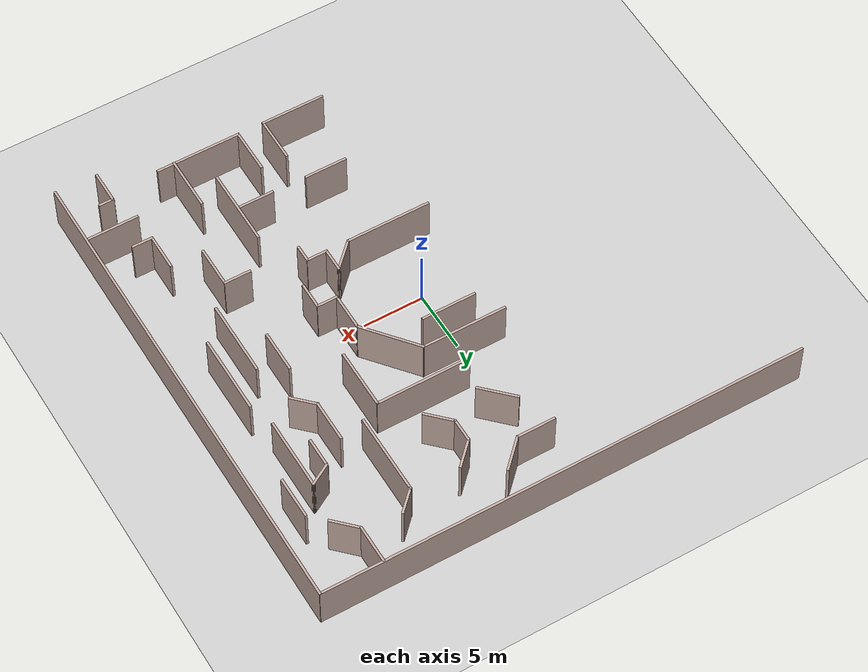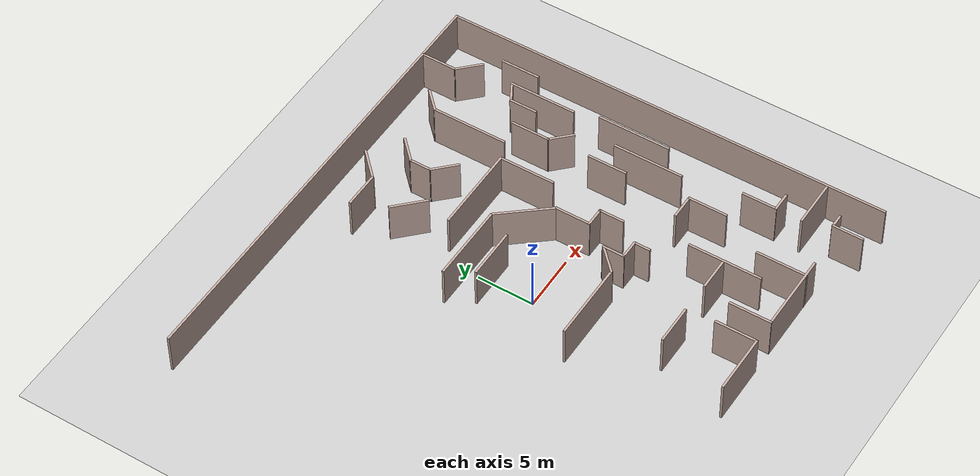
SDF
<sdf version="1.7">
 <world name="default">
  <model name="ground_plane">
   <static>1</static>
   <link name="link">
    <collision name="collision">
     <geometry><plane><normal>0 0 1</normal><size>100 100</size></plane></geometry>
     <surface><friction><ode><mu>100</mu><mu2>50</mu2></ode></friction></surface>
    </collision>
    <visual name="visual">
     <cast_shadows>0</cast_shadows>
     <geometry><plane><normal>0 0 1</normal><size>100 100</size></plane></geometry>
     <material>
      <script><uri>file://media/materials/scripts/gazebo.material</uri><name>Gazebo/Grey</name></script>
     </material>
    </visual>
   </link>
  </model>
  <model name="Untitled">
   <pose>-0.005486 -0.005193 0 0 -0 0</pose>
   <link name="Wall_0">
    <collision name="Wall_0_Collision">
     <geometry><box><size>40.15 0.2 5.0</size></box></geometry>
     <pose>0 0 1.25 0 -0 0</pose>
    </collision>
    <visual name="Wall_0_Visual">
     <pose>0 0 1.25 0 -0 0</pose>
     <geometry><box><size>40.15 0.2 5.0</size></box></geometry>
     <material>
      <script><uri>file://media/materials/scripts/gazebo.material</uri><name>Gazebo/Grey</name></script>
      <ambient>0.760784 0.662745 0.627451 1</ambient>
     </material>
     <meta><layer>0</layer></meta>
    </visual>
    <pose>20.0055 0.005193 0 0 -0 1.5708</pose>
   </link>
   <link name="Wall_10">
    <collision name="Wall_10_Collision">
     <geometry><box><size>3.75 0.2 5.0</size></box></geometry>
     <pose>0 0 1.25 0 -0 0</pose>
    </collision>
    <visual name="Wall_10_Visual">
     <pose>0 0 1.25 0 -0 0</pose>
     <geometry><box><size>3.75 0.2 5.0</size></box></geometry>
     <material>
      <script><uri>file://media/materials/scripts/gazebo.material</uri><name>Gazebo/Grey</name></script>
      <ambient>0.760784 0.662745 0.627451 1</ambient>
     </material>
     <meta><layer>0</layer></meta>
    </visual>
    <pose>5.61157 -16.0529 0 0 -0 1.5708</pose>
   </link>
   <link name="Wall_101">
    <collision name="Wall_101_Collision">
     <geometry><box><size>1.25 0.2 5.0</size></box></geometry>
     <pose>0 0 1.25 0 -0 0</pose>
    </collision>
    <visual name="Wall_101_Visual">
     <pose>0 0 1.25 0 -0 0</pose>
     <geometry><box><size>1.25 0.2 5.0</size></box></geometry>
     <material>
      <script><uri>file://media/materials/scripts/gazebo.material</uri><name>Gazebo/Grey</name></script>
      <ambient>0.760784 0.662745 0.627451 1</ambient>
     </material>
     <meta><layer>0</layer></meta>
    </visual>
    <pose>17.1497 -17.2358 0 0 -0 0</pose>
   </link>
   <link name="Wall_105">
    <collision name="Wall_105_Collision">
     <geometry><box><size>4.5 0.2 5.0</size></box></geometry>
     <pose>0 0 1.25 0 -0 0</pose>
    </collision>
    <visual name="Wall_105_Visual">
     <pose>0 0 1.25 0 -0 0</pose>
     <geometry><box><size>4.5 0.2 5.0</size></box></geometry>
     <material>
      <script><uri>file://media/materials/scripts/gazebo.material</uri><name>Gazebo/Grey</name></script>
      <ambient>0.760784 0.662745 0.627451 1</ambient>
     </material>
     <meta><layer>0</layer></meta>
    </visual>
    <pose>11.0787 -15.7159 0 0 -0 1.5708</pose>
   </link>
   <link name="Wall_108">
    <collision name="Wall_108_Collision">
     <geometry><box><size>4.25 0.2 5.0</size></box></geometry>
     <pose>0 0 1.25 0 -0 0</pose>
    </collision>
    <visual name="Wall_108_Visual">
     <pose>0 0 1.25 0 -0 0</pose>
     <geometry><box><size>4.25 0.2 5.0</size></box></geometry>
     <material>
      <script><uri>file://media/materials/scripts/gazebo.material</uri><name>Gazebo/Grey</name></script>
      <ambient>0.760784 0.662745 0.627451 1</ambient>
     </material>
     <meta><layer>0</layer></meta>
    </visual>
    <pose>17.8248 -14.8964 0 0 -0 3.14159</pose>
   </link>
   <link name="Wall_14">
    <collision name="Wall_14_Collision">
     <geometry><box><size>3.75 0.2 5.0</size></box></geometry>
     <pose>0 0 1.25 0 -0 0</pose>
    </collision>
    <visual name="Wall_14_Visual">
     <pose>0 0 1.25 0 -0 0</pose>
     <geometry><box><size>3.75 0.2 5.0</size></box></geometry>
     <material>
      <script><uri>file://media/materials/scripts/gazebo.material</uri><name>Gazebo/Grey</name></script>
      <ambient>0.760784 0.662745 0.627451 1</ambient>
     </material>
     <meta><layer>0</layer></meta>
    </visual>
    <pose>3.45932 -16.0342 0 0 -0 -1.5708</pose>
   </link>
   <link name="Wall_15">
    <collision name="Wall_15_Collision">
     <geometry><box><size>5.25 0.2 5.0</size></box></geometry>
     <pose>0 0 1.25 0 -0 0</pose>
    </collision>
    <visual name="Wall_15_Visual">
     <pose>0 0 1.25 0 -0 0</pose>
     <geometry><box><size>5.25 0.2 5.0</size></box></geometry>
     <material>
      <script><uri>file://media/materials/scripts/gazebo.material</uri><name>Gazebo/Grey</name></script>
      <ambient>0.760784 0.662745 0.627451 1</ambient>
     </material>
     <meta><layer>0</layer></meta>
    </visual>
    <pose>0.909321 -17.8342 0 0 -0 3.14159</pose>
   </link>
   <link name="Wall_160">
    <collision name="Wall_160_Collision">
     <geometry><box><size>6 0.2 5.0</size></box></geometry>
     <pose>0 0 1.25 0 -0 0</pose>
    </collision>
    <visual name="Wall_160_Visual">
     <pose>0 0 1.25 0 -0 0</pose>
     <geometry><box><size>6 0.2 5.0</size></box></geometry>
     <material>
      <script><uri>file://media/materials/scripts/gazebo.material</uri><name>Gazebo/Grey</name></script>
      <ambient>0.760784 0.662745 0.627451 1</ambient>
     </material>
     <meta><layer>0</layer></meta>
    </visual>
    <pose>16.0332 9.15575 0 0 -0 -1.5708</pose>
   </link>
   <link name="Wall_162">
    <collision name="Wall_162_Collision">
     <geometry><box><size>2 0.2 5.0</size></box></geometry>
     <pose>0 0 1.25 0 -0 0</pose>
    </collision>
    <visual name="Wall_162_Visual">
     <pose>0 0 1.25 0 -0 0</pose>
     <geometry><box><size>2 0.2 5.0</size></box></geometry>
     <material>
      <script><uri>file://media/materials/scripts/gazebo.material</uri><name>Gazebo/Grey</name></script>
      <ambient>0.760784 0.662745 0.627451 1</ambient>
     </material>
     <meta><layer>0</layer></meta>
    </visual>
    <pose>15.2321 11.6183 0 0 -0 -2.61799</pose>
   </link>
   <link name="Wall_163">
    <collision name="Wall_163_Collision">
     <geometry><box><size>2.5 0.2 5.0</size></box></geometry>
     <pose>0 0 1.25 0 -0 0</pose>
    </collision>
    <visual name="Wall_163_Visual">
     <pose>0 0 1.25 0 -0 0</pose>
     <geometry><box><size>2.5 0.2 5.0</size></box></geometry>
     <material>
      <script><uri>file://media/materials/scripts/gazebo.material</uri><name>Gazebo/Grey</name></script>
      <ambient>0.760784 0.662745 0.627451 1</ambient>
     </material>
     <meta><layer>0</layer></meta>
    </visual>
    <pose>14.4311 9.98075 0 0 -0 -1.5708</pose>
   </link>
   <link name="Wall_165">
    <collision name="Wall_165_Collision">
     <geometry><box><size>2.25 0.2 5.0</size></box></geometry>
     <pose>0 0 1.25 0 -0 0</pose>
    </collision>
    <visual name="Wall_165_Visual">
     <pose>0 0 1.25 0 -0 0</pose>
     <geometry><box><size>2.25 0.2 5.0</size></box></geometry>
     <material>
      <script><uri>file://media/materials/scripts/gazebo.material</uri><name>Gazebo/Grey</name></script>
      <ambient>0.760784 0.662745 0.627451 1</ambient>
     </material>
     <meta><layer>0</layer></meta>
    </visual>
    <pose>11.0797 16.5663 0 0 -0 0.785398</pose>
   </link>
   <link name="Wall_168">
    <collision name="Wall_168_Collision">
     <geometry><box><size>6.75 0.2 5.0</size></box></geometry>
     <pose>0 0 1.25 0 -0 0</pose>
    </collision>
    <visual name="Wall_168_Visual">
     <pose>0 0 1.25 0 -0 0</pose>
     <geometry><box><size>6.75 0.2 5.0</size></box></geometry>
     <material>
      <script><uri>file://media/materials/scripts/gazebo.material</uri><name>Gazebo/Grey</name></script>
      <ambient>0.760784 0.662745 0.627451 1</ambient>
     </material>
     <meta><layer>0</layer></meta>
    </visual>
    <pose>10.3373 12.5238 0 0 -0 -1.5708</pose>
   </link>
   <link name="Wall_170">
    <collision name="Wall_170_Collision">
     <geometry><box><size>3.5 0.2 5.0</size></box></geometry>
     <pose>0 0 1.25 0 -0 0</pose>
    </collision>
    <visual name="Wall_170_Visual">
     <pose>0 0 1.25 0 -0 0</pose>
     <geometry><box><size>3.5 0.2 5.0</size></box></geometry>
     <material>
      <script><uri>file://media/materials/scripts/gazebo.material</uri><name>Gazebo/Grey</name></script>
      <ambient>0.760784 0.662745 0.627451 1</ambient>
     </material>
     <meta><layer>0</layer></meta>
    </visual>
    <pose>12.4529 8.046 0 0 -0 -1.5708</pose>
   </link>
   <link name="Wall_171">
    <collision name="Wall_171_Collision">
     <geometry><box><size>2.25 0.2 5.0</size></box></geometry>
     <pose>0 0 1.25 0 -0 0</pose>
    </collision>
    <visual name="Wall_171_Visual">
     <pose>0 0 1.25 0 -0 0</pose>
     <geometry><box><size>2.25 0.2 5.0</size></box></geometry>
     <material>
      <script><uri>file://media/materials/scripts/gazebo.material</uri><name>Gazebo/Grey</name></script>
      <ambient>0.760784 0.662745 0.627451 1</ambient>
     </material>
     <meta><layer>0</layer></meta>
    </visual>
    <pose>13.1954 5.62854 0 0 -0 -0.785398</pose>
   </link>
   <link name="Wall_178">
    <collision name="Wall_178_Collision">
     <geometry><box><size>3.5 0.2 5.0</size></box></geometry>
     <pose>0 0 1.25 0 -0 0</pose>
    </collision>
    <visual name="Wall_178_Visual">
     <pose>0 0 1.25 0 -0 0</pose>
     <geometry><box><size>3.5 0.2 5.0</size></box></geometry>
     <material>
      <script><uri>file://media/materials/scripts/gazebo.material</uri><name>Gazebo/Grey</name></script>
      <ambient>0.760784 0.662745 0.627451 1</ambient>
     </material>
     <meta><layer>0</layer></meta>
    </visual>
    <pose>17.7619 12.3579 0 0 -0 -1.5708</pose>
   </link>
   <link name="Wall_180">
    <collision name="Wall_180_Collision">
     <geometry><box><size>3.25 0.2 5.0</size></box></geometry>
     <pose>0 0 1.25 0 -0 0</pose>
    </collision>
    <visual name="Wall_180_Visual">
     <pose>0 0 1.25 0 -0 0</pose>
     <geometry><box><size>3.25 0.2 5.0</size></box></geometry>
     <material>
      <script><uri>file://media/materials/scripts/gazebo.material</uri><name>Gazebo/Grey</name></script>
      <ambient>0.760784 0.662745 0.627451 1</ambient>
     </material>
     <meta><layer>0</layer></meta>
    </visual>
    <pose>14.9156 18.4231 0 0 -0 -1.5708</pose>
   </link>
   <link name="Wall_181">
    <collision name="Wall_181_Collision">
     <geometry><box><size>2.5 0.2 5.0</size></box></geometry>
     <pose>0 0 1.25 0 -0 0</pose>
    </collision>
    <visual name="Wall_181_Visual">
     <pose>0 0 1.25 0 -0 0</pose>
     <geometry><box><size>2.5 0.2 5.0</size></box></geometry>
     <material>
      <script><uri>file://media/materials/scripts/gazebo.material</uri><name>Gazebo/Grey</name></script>
      <ambient>0.760784 0.662745 0.627451 1</ambient>
     </material>
     <meta><layer>0</layer></meta>
    </visual>
    <pose>15.7464 16.0422 0 0 -0 -0.785398</pose>
   </link>
   <link name="Wall_194">
    <collision name="Wall_194_Collision">
     <geometry><box><size>3.25 0.2 5.0</size></box></geometry>
     <pose>0 0 1.25 0 -0 0</pose>
    </collision>
    <visual name="Wall_194_Visual">
     <pose>0 0 1.25 0 -0 0</pose>
     <geometry><box><size>3.25 0.2 5.0</size></box></geometry>
     <material>
      <script><uri>file://media/materials/scripts/gazebo.material</uri><name>Gazebo/Grey</name></script>
      <ambient>0.760784 0.662745 0.627451 1</ambient>
     </material>
     <meta><layer>0</layer></meta>
    </visual>
    <pose>0.872 12.0434 0 0 -0 -0.785398</pose>
   </link>
   <link name="Wall_197">
    <collision name="Wall_197_Collision">
     <geometry><box><size>3.25 0.2 5.0</size></box></geometry>
     <pose>0 0 1.25 0 -0 0</pose>
    </collision>
    <visual name="Wall_197_Visual">
     <pose>0 0 1.25 0 -0 0</pose>
     <geometry><box><size>3.25 0.2 5.0</size></box></geometry>
     <material>
      <script><uri>file://media/materials/scripts/gazebo.material</uri><name>Gazebo/Grey</name></script>
      <ambient>0.760784 0.662745 0.627451 1</ambient>
     </material>
     <meta><layer>0</layer></meta>
    </visual>
    <pose>0.091201 16.0022 0 0 -0 0</pose>
   </link>
   <link name="Wall_198">
    <collision name="Wall_198_Collision">
     <geometry><box><size>3 0.2 5.0</size></box></geometry>
     <pose>0 0 1.25 0 -0 0</pose>
    </collision>
    <visual name="Wall_198_Visual">
     <pose>0 0 1.25 0 -0 0</pose>
     <geometry><box><size>3 0.2 5.0</size></box></geometry>
     <material>
      <script><uri>file://media/materials/scripts/gazebo.material</uri><name>Gazebo/Grey</name></script>
      <ambient>0.760784 0.662745 0.627451 1</ambient>
     </material>
     <meta><layer>0</layer></meta>
    </visual>
    <pose>2.64883 17.0098 0 0 -0 0.785398</pose>
   </link>
   <link name="Wall_200">
    <collision name="Wall_200_Collision">
     <geometry><box><size>2.5 0.2 5.0</size></box></geometry>
     <pose>0 0 1.25 0 -0 0</pose>
    </collision>
    <visual name="Wall_200_Visual">
     <pose>0 0 1.25 0 -0 0</pose>
     <geometry><box><size>2.5 0.2 5.0</size></box></geometry>
     <material>
      <script><uri>file://media/materials/scripts/gazebo.material</uri><name>Gazebo/Grey</name></script>
      <ambient>0.760784 0.662745 0.627451 1</ambient>
     </material>
     <meta><layer>0</layer></meta>
    </visual>
    <pose>5.57075 15.2649 0 0 -0 -2.35619</pose>
   </link>
   <link name="Wall_201">
    <collision name="Wall_201_Collision">
     <geometry><box><size>2 0.2 5.0</size></box></geometry>
     <pose>0 0 1.25 0 -0 0</pose>
    </collision>
    <visual name="Wall_201_Visual">
     <pose>0 0 1.25 0 -0 0</pose>
     <geometry><box><size>2 0.2 5.0</size></box></geometry>
     <material>
      <script><uri>file://media/materials/scripts/gazebo.material</uri><name>Gazebo/Grey</name></script>
      <ambient>0.760784 0.662745 0.627451 1</ambient>
     </material>
     <meta><layer>0</layer></meta>
    </visual>
    <pose>4.7399 13.5091 0 0 -0 -1.5708</pose>
   </link>
   <link name="Wall_202">
    <collision name="Wall_202_Collision">
     <geometry><box><size>2.5 0.2 5.0</size></box></geometry>
     <pose>0 0 1.25 0 -0 0</pose>
    </collision>
    <visual name="Wall_202_Visual">
     <pose>0 0 1.25 0 -0 0</pose>
     <geometry><box><size>2.5 0.2 5.0</size></box></geometry>
     <material>
      <script><uri>file://media/materials/scripts/gazebo.material</uri><name>Gazebo/Grey</name></script>
      <ambient>0.760784 0.662745 0.627451 1</ambient>
     </material>
     <meta><layer>0</layer></meta>
    </visual>
    <pose>5.57075 11.7532 0 0 -0 -0.785398</pose>
   </link>
   <link name="Wall_204">
    <collision name="Wall_204_Collision">
     <geometry><box><size>1.5 0.2 5.0</size></box></geometry>
     <pose>0 0 1.25 0 -0 0</pose>
    </collision>
    <visual name="Wall_204_Visual">
     <pose>0 0 1.25 0 -0 0</pose>
     <geometry><box><size>1.5 0.2 5.0</size></box></geometry>
     <material>
      <script><uri>file://media/materials/scripts/gazebo.material</uri><name>Gazebo/Grey</name></script>
      <ambient>0.760784 0.662745 0.627451 1</ambient>
     </material>
     <meta><layer>0</layer></meta>
    </visual>
    <pose>6.85996 -5.68133 0 0 -0 -1.5708</pose>
   </link>
   <link name="Wall_31">
    <collision name="Wall_31_Collision">
     <geometry><box><size>6.982 0.2 5.0</size></box></geometry>
     <pose>0 0 1.25 0 -0 0</pose>
    </collision>
    <visual name="Wall_31_Visual">
     <pose>0 0 1.25 0 -0 0</pose>
     <geometry><box><size>6.982 0.2 5.0</size></box></geometry>
     <material>
      <script><uri>file://media/materials/scripts/gazebo.material</uri><name>Gazebo/Grey</name></script>
      <ambient>0.760784 0.662745 0.627451 1</ambient>
     </material>
     <meta><layer>0</layer></meta>
    </visual>
    <pose>0.005486 -4.99481 0 0 -0 0</pose>
   </link>
   <link name="Wall_38">
    <collision name="Wall_38_Collision">
     <geometry><box><size>3.187 0.2 5.0</size></box></geometry>
     <pose>0 0 1.25 0 -0 0</pose>
    </collision>
    <visual name="Wall_38_Visual">
     <pose>0 0 1.25 0 -0 0</pose>
     <geometry><box><size>3.187 0.2 5.0</size></box></geometry>
     <material>
      <script><uri>file://media/materials/scripts/gazebo.material</uri><name>Gazebo/Grey</name></script>
      <ambient>0.760784 0.662745 0.627451 1</ambient>
     </material>
     <meta><layer>0</layer></meta>
    </visual>
    <pose>6.65749 0.486693 0 0 -0 1.5708</pose>
   </link>
   <link name="Wall_39">
    <collision name="Wall_39_Collision">
     <geometry><box><size>5.26558 0.2 5.0</size></box></geometry>
     <pose>0 0 1.25 0 -0 0</pose>
    </collision>
    <visual name="Wall_39_Visual">
     <pose>0 0 1.25 0 -0 0</pose>
     <geometry><box><size>5.26558 0.2 5.0</size></box></geometry>
     <material>
      <script><uri>file://media/materials/scripts/gazebo.material</uri><name>Gazebo/Grey</name></script>
      <ambient>0.760784 0.662745 0.627451 1</ambient>
     </material>
     <meta><layer>0</layer></meta>
    </visual>
    <pose>5.03949 3.98619 0 0 -0 2.25567</pose>
   </link>
   <link name="Wall_40">
    <collision name="Wall_40_Collision">
     <geometry><box><size>6.98207 0.2 5.0</size></box></geometry>
     <pose>0 0 1.25 0 -0 0</pose>
    </collision>
    <visual name="Wall_40_Visual">
     <pose>0 0 1.25 0 -0 0</pose>
     <geometry><box><size>6.98207 0.2 5.0</size></box></geometry>
     <material>
      <script><uri>file://media/materials/scripts/gazebo.material</uri><name>Gazebo/Grey</name></script>
      <ambient>0.760784 0.662745 0.627451 1</ambient>
     </material>
     <meta><layer>0</layer></meta>
    </visual>
    <pose>0.005486 5.98269 0 0 -0 3.13706</pose>
   </link>
   <link name="Wall_46">
    <collision name="Wall_46_Collision">
     <geometry><box><size>2.75 0.2 5.0</size></box></geometry>
     <pose>0 0 1.25 0 -0 0</pose>
    </collision>
    <visual name="Wall_46_Visual">
     <pose>0 0 1.25 0 -0 0</pose>
     <geometry><box><size>2.75 0.2 5.0</size></box></geometry>
     <material>
      <script><uri>file://media/materials/scripts/gazebo.material</uri><name>Gazebo/Grey</name></script>
      <ambient>0.760784 0.662745 0.627451 1</ambient>
     </material>
     <meta><layer>0</layer></meta>
    </visual>
    <pose>4.34072 -4.07557 0 0 -0 0.785398</pose>
   </link>
   <link name="Wall_50">
    <collision name="Wall_50_Collision">
     <geometry><box><size>6.5 0.2 5.0</size></box></geometry>
     <pose>0 0 1.25 0 -0 0</pose>
    </collision>
    <visual name="Wall_50_Visual">
     <pose>0 0 1.25 0 -0 0</pose>
     <geometry><box><size>6.5 0.2 5.0</size></box></geometry>
     <material>
      <script><uri>file://media/materials/scripts/gazebo.material</uri><name>Gazebo/Grey</name></script>
      <ambient>0.760784 0.662745 0.627451 1</ambient>
     </material>
     <meta><layer>0</layer></meta>
    </visual>
    <pose>8.95661 -11.8905 0 0 -0 1.5708</pose>
   </link>
   <link name="Wall_52">
    <collision name="Wall_52_Collision">
     <geometry><box><size>2 0.2 5.0</size></box></geometry>
     <pose>0 0 1.25 0 -0 0</pose>
    </collision>
    <visual name="Wall_52_Visual">
     <pose>0 0 1.25 0 -0 0</pose>
     <geometry><box><size>2 0.2 5.0</size></box></geometry>
     <material>
      <script><uri>file://media/materials/scripts/gazebo.material</uri><name>Gazebo/Grey</name></script>
      <ambient>0.760784 0.662745 0.627451 1</ambient>
     </material>
     <meta><layer>0</layer></meta>
    </visual>
    <pose>5.25996 -4.08133 0 0 -0 -1.5708</pose>
   </link>
   <link name="Wall_53">
    <collision name="Wall_53_Collision">
     <geometry><box><size>1.75 0.2 5.0</size></box></geometry>
     <pose>0 0 1.25 0 -0 0</pose>
    </collision>
    <visual name="Wall_53_Visual">
     <pose>0 0 1.25 0 -0 0</pose>
     <geometry><box><size>1.75 0.2 5.0</size></box></geometry>
     <material>
      <script><uri>file://media/materials/scripts/gazebo.material</uri><name>Gazebo/Grey</name></script>
      <ambient>0.760784 0.662745 0.627451 1</ambient>
     </material>
     <meta><layer>0</layer></meta>
    </visual>
    <pose>6.05996 -5.00633 0 0 -0 0</pose>
   </link>
   <link name="Wall_55">
    <collision name="Wall_55_Collision">
     <geometry><box><size>1.75 0.2 5.0</size></box></geometry>
     <pose>0 0 1.25 0 -0 0</pose>
    </collision>
    <visual name="Wall_55_Visual">
     <pose>0 0 1.25 0 -0 0</pose>
     <geometry><box><size>1.75 0.2 5.0</size></box></geometry>
     <material>
      <script><uri>file://media/materials/scripts/gazebo.material</uri><name>Gazebo/Grey</name></script>
      <ambient>0.760784 0.662745 0.627451 1</ambient>
     </material>
     <meta><layer>0</layer></meta>
    </visual>
    <pose>7.45743 -1.0318 0 0 -0 1.5e-05</pose>
   </link>
   <link name="Wall_56">
    <collision name="Wall_56_Collision">
     <geometry><box><size>2.25 0.2 5.0</size></box></geometry>
     <pose>0 0 1.25 0 -0 0</pose>
    </collision>
    <visual name="Wall_56_Visual">
     <pose>0 0 1.25 0 -0 0</pose>
     <geometry><box><size>2.25 0.2 5.0</size></box></geometry>
     <material>
      <script><uri>file://media/materials/scripts/gazebo.material</uri><name>Gazebo/Grey</name></script>
      <ambient>0.760784 0.662745 0.627451 1</ambient>
     </material>
     <meta><layer>0</layer></meta>
    </visual>
    <pose>8.25738 -2.08178 0 0 -0 -1.5708</pose>
   </link>
   <link name="Wall_6">
    <collision name="Wall_6_Collision">
     <geometry><box><size>40.15 0.2 5.0</size></box></geometry>
     <pose>0 0 1.25 0 -0 0</pose>
    </collision>
    <visual name="Wall_6_Visual">
     <pose>0 0 1.25 0 -0 0</pose>
     <geometry><box><size>40.15 0.2 5.0</size></box></geometry>
     <material>
      <script><uri>file://media/materials/scripts/gazebo.material</uri><name>Gazebo/Grey</name></script>
      <ambient>0.760784 0.662745 0.627451 1</ambient>
     </material>
     <meta><layer>0</layer></meta>
    </visual>
    <pose>0.005486 20.0052 0 0 -0 0</pose>
   </link>
   <link name="Wall_77">
    <collision name="Wall_77_Collision">
     <geometry><box><size>4.5 0.2 5.0</size></box></geometry>
     <pose>0 0 1.25 0 -0 0</pose>
    </collision>
    <visual name="Wall_77_Visual">
     <pose>0 0 1.25 0 -0 0</pose>
     <geometry><box><size>4.5 0.2 5.0</size></box></geometry>
     <material>
      <script><uri>file://media/materials/scripts/gazebo.material</uri><name>Gazebo/Grey</name></script>
      <ambient>0.760784 0.662745 0.627451 1</ambient>
     </material>
     <meta><layer>0</layer></meta>
    </visual>
    <pose>0.028887 3.81944 0 0 -0 0</pose>
   </link>
   <link name="Wall_79">
    <collision name="Wall_79_Collision">
     <geometry><box><size>3.5 0.2 5.0</size></box></geometry>
     <pose>0 0 1.25 0 -0 0</pose>
    </collision>
    <visual name="Wall_79_Visual">
     <pose>0 0 1.25 0 -0 0</pose>
     <geometry><box><size>3.5 0.2 5.0</size></box></geometry>
     <material>
      <script><uri>file://media/materials/scripts/gazebo.material</uri><name>Gazebo/Grey</name></script>
      <ambient>0.760784 0.662745 0.627451 1</ambient>
     </material>
     <meta><layer>0</layer></meta>
    </visual>
    <pose>1.50506 -11.7253 0 0 -0 0</pose>
   </link>
   <link name="Wall_8">
    <collision name="Wall_8_Collision">
     <geometry><box><size>7 0.2 5.0</size></box></geometry>
     <pose>0 0 1.25 0 -0 0</pose>
    </collision>
    <visual name="Wall_8_Visual">
     <pose>0 0 1.25 0 -0 0</pose>
     <geometry><box><size>7 0.2 5.0</size></box></geometry>
     <material>
      <script><uri>file://media/materials/scripts/gazebo.material</uri><name>Gazebo/Grey</name></script>
      <ambient>0.760784 0.662745 0.627451 1</ambient>
     </material>
     <meta><layer>0</layer></meta>
    </visual>
    <pose>9.03657 -17.8529 0 0 -0 0</pose>
   </link>
   <link name="Wall_81">
    <collision name="Wall_81_Collision">
     <geometry><box><size>3 0.2 5.0</size></box></geometry>
     <pose>0 0 1.25 0 -0 0</pose>
    </collision>
    <visual name="Wall_81_Visual">
     <pose>0 0 1.25 0 -0 0</pose>
     <geometry><box><size>3 0.2 5.0</size></box></geometry>
     <material>
      <script><uri>file://media/materials/scripts/gazebo.material</uri><name>Gazebo/Grey</name></script>
      <ambient>0.760784 0.662745 0.627451 1</ambient>
     </material>
     <meta><layer>0</layer></meta>
    </visual>
    <pose>7.46196 -11.796 0 0 -0 3.14159</pose>
   </link>
   <link name="Wall_84">
    <collision name="Wall_84_Collision">
     <geometry><box><size>6.5 0.2 5.0</size></box></geometry>
     <pose>0 0 1.25 0 -0 0</pose>
    </collision>
    <visual name="Wall_84_Visual">
     <pose>0 0 1.25 0 -0 0</pose>
     <geometry><box><size>6.5 0.2 5.0</size></box></geometry>
     <material>
      <script><uri>file://media/materials/scripts/gazebo.material</uri><name>Gazebo/Grey</name></script>
      <ambient>0.760784 0.662745 0.627451 1</ambient>
     </material>
     <meta><layer>0</layer></meta>
    </visual>
    <pose>16.6932 0.924551 0 0 -0 -1.5708</pose>
   </link>
   <link name="Wall_86">
    <collision name="Wall_86_Collision">
     <geometry><box><size>6.25 0.2 5.0</size></box></geometry>
     <pose>0 0 1.25 0 -0 0</pose>
    </collision>
    <visual name="Wall_86_Visual">
     <pose>0 0 1.25 0 -0 0</pose>
     <geometry><box><size>6.25 0.2 5.0</size></box></geometry>
     <material>
      <script><uri>file://media/materials/scripts/gazebo.material</uri><name>Gazebo/Grey</name></script>
      <ambient>0.760784 0.662745 0.627451 1</ambient>
     </material>
     <meta><layer>0</layer></meta>
    </visual>
    <pose>14.7281 -1.55304 0 0 -0 1.5708</pose>
   </link>
   <link name="Wall_88">
    <collision name="Wall_88_Collision">
     <geometry><box><size>3.5 0.2 5.0</size></box></geometry>
     <pose>0 0 1.25 0 -0 0</pose>
    </collision>
    <visual name="Wall_88_Visual">
     <pose>0 0 1.25 0 -0 0</pose>
     <geometry><box><size>3.5 0.2 5.0</size></box></geometry>
     <material>
      <script><uri>file://media/materials/scripts/gazebo.material</uri><name>Gazebo/Grey</name></script>
      <ambient>0.760784 0.662745 0.627451 1</ambient>
     </material>
     <meta><layer>0</layer></meta>
    </visual>
    <pose>12.6695 0.987398 0 0 -0 -1.5708</pose>
   </link>
   <link name="Wall_90">
    <collision name="Wall_90_Collision">
     <geometry><box><size>7.75 0.2 5.0</size></box></geometry>
     <pose>0 0 1.25 0 -0 0</pose>
    </collision>
    <visual name="Wall_90_Visual">
     <pose>0 0 1.25 0 -0 0</pose>
     <geometry><box><size>7.75 0.2 5.0</size></box></geometry>
     <material>
      <script><uri>file://media/materials/scripts/gazebo.material</uri><name>Gazebo/Grey</name></script>
      <ambient>0.760784 0.662745 0.627451 1</ambient>
     </material>
     <meta><layer>0</layer></meta>
    </visual>
    <pose>4.95959 8.49763 0 0 -0 0</pose>
   </link>
   <link name="Wall_91">
    <collision name="Wall_91_Collision">
     <geometry><box><size>5 0.2 5.0</size></box></geometry>
     <pose>0 0 1.25 0 -0 0</pose>
    </collision>
    <visual name="Wall_91_Visual">
     <pose>0 0 1.25 0 -0 0</pose>
     <geometry><box><size>5 0.2 5.0</size></box></geometry>
     <material>
      <script><uri>file://media/materials/scripts/gazebo.material</uri><name>Gazebo/Grey</name></script>
      <ambient>0.760784 0.662745 0.627451 1</ambient>
     </material>
     <meta><layer>0</layer></meta>
    </visual>
    <pose>8.75959 6.07263 0 0 -0 -1.5708</pose>
   </link>
   <link name="Wall_93">
    <collision name="Wall_93_Collision">
     <geometry><box><size>2.25 0.2 5.0</size></box></geometry>
     <pose>0 0 1.25 0 -0 0</pose>
    </collision>
    <visual name="Wall_93_Visual">
     <pose>0 0 1.25 0 -0 0</pose>
     <geometry><box><size>2.25 0.2 5.0</size></box></geometry>
     <material>
      <script><uri>file://media/materials/scripts/gazebo.material</uri><name>Gazebo/Grey</name></script>
      <ambient>0.760784 0.662745 0.627451 1</ambient>
     </material>
     <meta><layer>0</layer></meta>
    </visual>
    <pose>12.0351 -6.28741 0 0 -0 0</pose>
   </link>
   <link name="Wall_94">
    <collision name="Wall_94_Collision">
     <geometry><box><size>3.5 0.2 5.0</size></box></geometry>
     <pose>0 0 1.25 0 -0 0</pose>
    </collision>
    <visual name="Wall_94_Visual">
     <pose>0 0 1.25 0 -0 0</pose>
     <geometry><box><size>3.5 0.2 5.0</size></box></geometry>
     <material>
      <script><uri>file://media/materials/scripts/gazebo.material</uri><name>Gazebo/Grey</name></script>
      <ambient>0.760784 0.662745 0.627451 1</ambient>
     </material>
     <meta><layer>0</layer></meta>
    </visual>
    <pose>13.0851 -7.96241 0 0 -0 -1.5708</pose>
   </link>
   <link name="Wall_96">
    <collision name="Wall_96_Collision">
     <geometry><box><size>3.09497 0.2 5.0</size></box></geometry>
     <pose>0 0 1.25 0 -0 0</pose>
    </collision>
    <visual name="Wall_96_Visual">
     <pose>0 0 1.25 0 -0 0</pose>
     <geometry><box><size>3.09497 0.2 5.0</size></box></geometry>
     <material>
      <script><uri>file://media/materials/scripts/gazebo.material</uri><name>Gazebo/Grey</name></script>
      <ambient>0.760784 0.662745 0.627451 1</ambient>
     </material>
     <meta><layer>0</layer></meta>
    </visual>
    <pose>15.7575 -11.1286 0 0 -0 -1.5708</pose>
   </link>
   <link name="Wall_97">
    <collision name="Wall_97_Collision">
     <geometry><box><size>1.75 0.2 5.0</size></box></geometry>
     <pose>0 0 1.25 0 -0 0</pose>
    </collision>
    <visual name="Wall_97_Visual">
     <pose>0 0 1.25 0 -0 0</pose>
     <geometry><box><size>1.75 0.2 5.0</size></box></geometry>
     <material>
      <script><uri>file://media/materials/scripts/gazebo.material</uri><name>Gazebo/Grey</name></script>
      <ambient>0.760784 0.662745 0.627451 1</ambient>
     </material>
     <meta><layer>0</layer></meta>
    </visual>
    <pose>16.5575 -12.6011 0 0 -0 0</pose>
   </link>
   <link name="Wall_99">
    <collision name="Wall_99_Collision">
     <geometry><box><size>2.75 0.2 5.0</size></box></geometry>
     <pose>0 0 1.25 0 -0 0</pose>
    </collision>
    <visual name="Wall_99_Visual">
     <pose>0 0 1.25 0 -0 0</pose>
     <geometry><box><size>2.75 0.2 5.0</size></box></geometry>
     <material>
      <script><uri>file://media/materials/scripts/gazebo.material</uri><name>Gazebo/Grey</name></script>
      <ambient>0.760784 0.662745 0.627451 1</ambient>
     </material>
     <meta><layer>0</layer></meta>
    </visual>
    <pose>16.5997 -18.5358 0 0 -0 -1.5708</pose>
   </link>
   <static>1</static>
  </model>
 </world>
</sdf>
